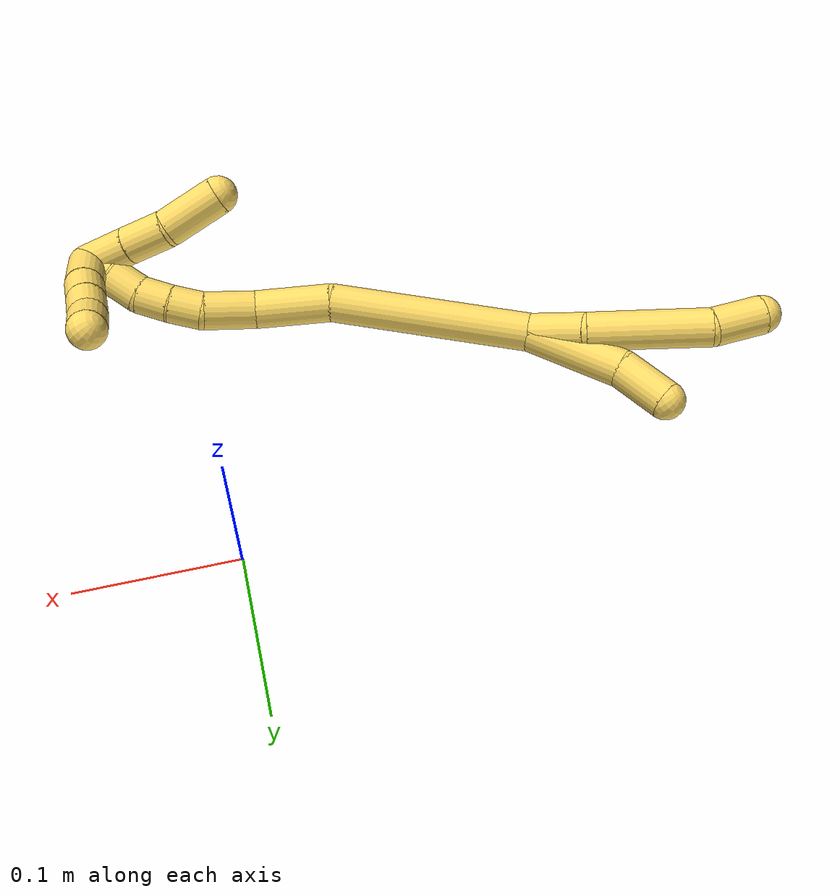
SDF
<sdf version="1.7">
 <world name="default">
  <model name="5">
   <static>0</static>
   <link name="5">
    <collision name="collision-cylinder-e_1_2_8">
     <pose>-0.008598 0.004806 0.016027 -0.291349 -0.474681 0.07095</pose>
     <geometry><cylinder><radius>0.0125</radius><length>0.037623</length></cylinder></geometry>
     <surface>
      <friction><ode><mu>1.16</mu><mu2>1.16</mu2><slip1>0</slip1><slip2>0</slip2></ode></friction>
      <contact><ode><kp>1e+06</kp><kd>1</kd><max_vel>0</max_vel><min_depth>0.001</min_depth></ode></contact>
     </surface>
    </collision>
    <visual name="visual-cylinder-e_1_2_8">
     <pose>-0.008598 0.004806 0.016027 -0.291349 -0.474681 0.07095</pose>
     <geometry><cylinder><radius>0.0125</radius><length>0.037623</length></cylinder></geometry>
     <material><ambient>1 0.858824 0.4 1</ambient></material>
    </visual>
    <collision name="collision-cylinder-e_2_8_9">
     <pose>-0.042853 0.011206 0.062117 -0.052956 -0.705785 0.019508</pose>
     <geometry><cylinder><radius>0.0125</radius><length>0.079112</length></cylinder></geometry>
     <surface>
      <friction><ode><mu>1.16</mu><mu2>1.16</mu2><slip1>0</slip1><slip2>0</slip2></ode></friction>
      <contact><ode><kp>1e+06</kp><kd>1</kd><max_vel>0</max_vel><min_depth>0.001</min_depth></ode></contact>
     </surface>
    </collision>
    <visual name="visual-cylinder-e_2_8_9">
     <pose>-0.042853 0.011206 0.062117 -0.052956 -0.705785 0.019508</pose>
     <geometry><cylinder><radius>0.0125</radius><length>0.079112</length></cylinder></geometry>
     <material><ambient>1 0.858824 0.4 1</ambient></material>
    </visual>
    <collision name="collision-cylinder-e_3_9_6">
     <pose>-0.079436 0.00807 0.103796 0.386694 -0.716668 -0.146388</pose>
     <geometry><cylinder><radius>0.0125</radius><length>0.033265</length></cylinder></geometry>
     <surface>
      <friction><ode><mu>1.16</mu><mu2>1.16</mu2><slip1>0</slip1><slip2>0</slip2></ode></friction>
      <contact><ode><kp>1e+06</kp><kd>1</kd><max_vel>0</max_vel><min_depth>0.001</min_depth></ode></contact>
     </surface>
    </collision>
    <visual name="visual-cylinder-e_3_9_6">
     <pose>-0.079436 0.00807 0.103796 0.386694 -0.716668 -0.146388</pose>
     <geometry><cylinder><radius>0.0125</radius><length>0.033265</length></cylinder></geometry>
     <material><ambient>1 0.858824 0.4 1</ambient></material>
    </visual>
    <collision name="collision-cylinder-e_1_2_10">
     <pose>-0.019843 0.016395 0.020193 -0.681979 -0.651699 0.238664</pose>
     <geometry><cylinder><radius>0.0125</radius><length>0.065431</length></cylinder></geometry>
     <surface>
      <friction><ode><mu>1.16</mu><mu2>1.16</mu2><slip1>0</slip1><slip2>0</slip2></ode></friction>
      <contact><ode><kp>1e+06</kp><kd>1</kd><max_vel>0</max_vel><min_depth>0.001</min_depth></ode></contact>
     </surface>
    </collision>
    <visual name="visual-cylinder-e_1_2_10">
     <pose>-0.019843 0.016395 0.020193 -0.681979 -0.651699 0.238664</pose>
     <geometry><cylinder><radius>0.0125</radius><length>0.065431</length></cylinder></geometry>
     <material><ambient>1 0.858824 0.4 1</ambient></material>
    </visual>
    <collision name="collision-cylinder-e_2_10_5">
     <pose>-0.049811 0.044476 0.048111 -0.986631 -0.625813 0.344453</pose>
     <geometry><cylinder><radius>0.0125</radius><length>0.034569</length></cylinder></geometry>
     <surface>
      <friction><ode><mu>1.16</mu><mu2>1.16</mu2><slip1>0</slip1><slip2>0</slip2></ode></friction>
      <contact><ode><kp>1e+06</kp><kd>1</kd><max_vel>0</max_vel><min_depth>0.001</min_depth></ode></contact>
     </surface>
    </collision>
    <visual name="visual-cylinder-e_2_10_5">
     <pose>-0.049811 0.044476 0.048111 -0.986631 -0.625813 0.344453</pose>
     <geometry><cylinder><radius>0.0125</radius><length>0.034569</length></cylinder></geometry>
     <material><ambient>1 0.858824 0.4 1</ambient></material>
    </visual>
    <collision name="collision-cylinder-e_1_2_11">
     <pose>0.049138 -0.009624 -0.042212 2.91744 0.848521 2.6532</pose>
     <geometry><cylinder><radius>0.0125</radius><length>0.130981</length></cylinder></geometry>
     <surface>
      <friction><ode><mu>1.16</mu><mu2>1.16</mu2><slip1>0</slip1><slip2>0</slip2></ode></friction>
      <contact><ode><kp>1e+06</kp><kd>1</kd><max_vel>0</max_vel><min_depth>0.001</min_depth></ode></contact>
     </surface>
    </collision>
    <visual name="visual-cylinder-e_1_2_11">
     <pose>0.049138 -0.009624 -0.042212 2.91744 0.848521 2.6532</pose>
     <geometry><cylinder><radius>0.0125</radius><length>0.130981</length></cylinder></geometry>
     <material><ambient>1 0.858824 0.4 1</ambient></material>
    </visual>
    <collision name="collision-cylinder-e_2_11_12">
     <pose>0.114363 -0.018604 -0.103683 -3.10822 0.69564 -3.0496</pose>
     <geometry><cylinder><radius>0.0125</radius><length>0.050204</length></cylinder></geometry>
     <surface>
      <friction><ode><mu>1.16</mu><mu2>1.16</mu2><slip1>0</slip1><slip2>0</slip2></ode></friction>
      <contact><ode><kp>1e+06</kp><kd>1</kd><max_vel>0</max_vel><min_depth>0.001</min_depth></ode></contact>
     </surface>
    </collision>
    <visual name="visual-cylinder-e_2_11_12">
     <pose>0.114363 -0.018604 -0.103683 -3.10822 0.69564 -3.0496</pose>
     <geometry><cylinder><radius>0.0125</radius><length>0.050204</length></cylinder></geometry>
     <material><ambient>1 0.858824 0.4 1</ambient></material>
    </visual>
    <collision name="collision-cylinder-e_3_12_13">
     <pose>0.144275 -0.015005 -0.132995 -2.85556 0.922225 -2.57739</pose>
     <geometry><cylinder><radius>0.0125</radius><length>0.034695</length></cylinder></geometry>
     <surface>
      <friction><ode><mu>1.16</mu><mu2>1.16</mu2><slip1>0</slip1><slip2>0</slip2></ode></friction>
      <contact><ode><kp>1e+06</kp><kd>1</kd><max_vel>0</max_vel><min_depth>0.001</min_depth></ode></contact>
     </surface>
    </collision>
    <visual name="visual-cylinder-e_3_12_13">
     <pose>0.144275 -0.015005 -0.132995 -2.85556 0.922225 -2.57739</pose>
     <geometry><cylinder><radius>0.0125</radius><length>0.034695</length></cylinder></geometry>
     <material><ambient>1 0.858824 0.4 1</ambient></material>
    </visual>
    <collision name="collision-cylinder-e_4_13_14">
     <pose>0.16689 -0.013454 -0.148971 2.90864 0.965076 2.70209</pose>
     <geometry><cylinder><radius>0.0125</radius><length>0.021385</length></cylinder></geometry>
     <surface>
      <friction><ode><mu>1.16</mu><mu2>1.16</mu2><slip1>0</slip1><slip2>0</slip2></ode></friction>
      <contact><ode><kp>1e+06</kp><kd>1</kd><max_vel>0</max_vel><min_depth>0.001</min_depth></ode></contact>
     </surface>
    </collision>
    <visual name="visual-cylinder-e_4_13_14">
     <pose>0.16689 -0.013454 -0.148971 2.90864 0.965076 2.70209</pose>
     <geometry><cylinder><radius>0.0125</radius><length>0.021385</length></cylinder></geometry>
     <material><ambient>1 0.858824 0.4 1</ambient></material>
    </visual>
    <collision name="collision-cylinder-e_5_14_15">
     <pose>0.183868 -0.017411 -0.160649 2.72418 0.915358 2.32943</pose>
     <geometry><cylinder><radius>0.0125</radius><length>0.020656</length></cylinder></geometry>
     <surface>
      <friction><ode><mu>1.16</mu><mu2>1.16</mu2><slip1>0</slip1><slip2>0</slip2></ode></friction>
      <contact><ode><kp>1e+06</kp><kd>1</kd><max_vel>0</max_vel><min_depth>0.001</min_depth></ode></contact>
     </surface>
    </collision>
    <visual name="visual-cylinder-e_5_14_15">
     <pose>0.183868 -0.017411 -0.160649 2.72418 0.915358 2.32943</pose>
     <geometry><cylinder><radius>0.0125</radius><length>0.020656</length></cylinder></geometry>
     <material><ambient>1 0.858824 0.4 1</ambient></material>
    </visual>
    <collision name="collision-cylinder-e_6_15_16">
     <pose>0.200637 -0.025259 -0.17072 2.25475 0.898377 1.5856</pose>
     <geometry><cylinder><radius>0.0125</radius><length>0.021938</length></cylinder></geometry>
     <surface>
      <friction><ode><mu>1.16</mu><mu2>1.16</mu2><slip1>0</slip1><slip2>0</slip2></ode></friction>
      <contact><ode><kp>1e+06</kp><kd>1</kd><max_vel>0</max_vel><min_depth>0.001</min_depth></ode></contact>
     </surface>
    </collision>
    <visual name="visual-cylinder-e_6_15_16">
     <pose>0.200637 -0.025259 -0.17072 2.25475 0.898377 1.5856</pose>
     <geometry><cylinder><radius>0.0125</radius><length>0.021938</length></cylinder></geometry>
     <material><ambient>1 0.858824 0.4 1</ambient></material>
    </visual>
    <collision name="collision-cylinder-e_7_16_1">
     <pose>0.216368 -0.035337 -0.180274 2.40153 0.789461 1.6421</pose>
     <geometry><cylinder><radius>0.0125</radius><length>0.020141</length></cylinder></geometry>
     <surface>
      <friction><ode><mu>1.16</mu><mu2>1.16</mu2><slip1>0</slip1><slip2>0</slip2></ode></friction>
      <contact><ode><kp>1e+06</kp><kd>1</kd><max_vel>0</max_vel><min_depth>0.001</min_depth></ode></contact>
     </surface>
    </collision>
    <visual name="visual-cylinder-e_7_16_1">
     <pose>0.216368 -0.035337 -0.180274 2.40153 0.789461 1.6421</pose>
     <geometry><cylinder><radius>0.0125</radius><length>0.020141</length></cylinder></geometry>
     <material><ambient>1 0.858824 0.4 1</ambient></material>
    </visual>
    <collision name="collision-cylinder-e_1_1_17">
     <pose>0.226015 -0.023675 -0.17889 -1.18799 0.139944 -0.094596</pose>
     <geometry><cylinder><radius>0.0125</radius><length>0.035804</length></cylinder></geometry>
     <surface>
      <friction><ode><mu>1.16</mu><mu2>1.16</mu2><slip1>0</slip1><slip2>0</slip2></ode></friction>
      <contact><ode><kp>1e+06</kp><kd>1</kd><max_vel>0</max_vel><min_depth>0.001</min_depth></ode></contact>
     </surface>
    </collision>
    <visual name="visual-cylinder-e_1_1_17">
     <pose>0.226015 -0.023675 -0.17889 -1.18799 0.139944 -0.094596</pose>
     <geometry><cylinder><radius>0.0125</radius><length>0.035804</length></cylinder></geometry>
     <material><ambient>1 0.858824 0.4 1</ambient></material>
    </visual>
    <collision name="collision-cylinder-e_2_17_18">
     <pose>0.22875 0.002556 -0.168014 -1.16079 0.022265 -0.0146</pose>
     <geometry><cylinder><radius>0.0125</radius><length>0.021349</length></cylinder></geometry>
     <surface>
      <friction><ode><mu>1.16</mu><mu2>1.16</mu2><slip1>0</slip1><slip2>0</slip2></ode></friction>
      <contact><ode><kp>1e+06</kp><kd>1</kd><max_vel>0</max_vel><min_depth>0.001</min_depth></ode></contact>
     </surface>
    </collision>
    <visual name="visual-cylinder-e_2_17_18">
     <pose>0.22875 0.002556 -0.168014 -1.16079 0.022265 -0.0146</pose>
     <geometry><cylinder><radius>0.0125</radius><length>0.021349</length></cylinder></geometry>
     <material><ambient>1 0.858824 0.4 1</ambient></material>
    </visual>
    <collision name="collision-cylinder-e_3_18_19">
     <pose>0.22908 0.021976 -0.159902 -1.18984 0.008853 -0.005991</pose>
     <geometry><cylinder><radius>0.0125</radius><length>0.020755</length></cylinder></geometry>
     <surface>
      <friction><ode><mu>1.16</mu><mu2>1.16</mu2><slip1>0</slip1><slip2>0</slip2></ode></friction>
      <contact><ode><kp>1e+06</kp><kd>1</kd><max_vel>0</max_vel><min_depth>0.001</min_depth></ode></contact>
     </surface>
    </collision>
    <visual name="visual-cylinder-e_3_18_19">
     <pose>0.22908 0.021976 -0.159902 -1.18984 0.008853 -0.005991</pose>
     <geometry><cylinder><radius>0.0125</radius><length>0.020755</length></cylinder></geometry>
     <material><ambient>1 0.858824 0.4 1</ambient></material>
    </visual>
    <collision name="collision-cylinder-e_4_19_4">
     <pose>0.230871 0.041337 -0.151094 -1.10008 0.154488 -0.094844</pose>
     <geometry><cylinder><radius>0.0125</radius><length>0.022092</length></cylinder></geometry>
     <surface>
      <friction><ode><mu>1.16</mu><mu2>1.16</mu2><slip1>0</slip1><slip2>0</slip2></ode></friction>
      <contact><ode><kp>1e+06</kp><kd>1</kd><max_vel>0</max_vel><min_depth>0.001</min_depth></ode></contact>
     </surface>
    </collision>
    <visual name="visual-cylinder-e_4_19_4">
     <pose>0.230871 0.041337 -0.151094 -1.10008 0.154488 -0.094844</pose>
     <geometry><cylinder><radius>0.0125</radius><length>0.022092</length></cylinder></geometry>
     <material><ambient>1 0.858824 0.4 1</ambient></material>
    </visual>
    <collision name="collision-cylinder-e_1_1_20">
     <pose>0.217733 -0.04208 -0.170813 0.132616 -0.371965 -0.024988</pose>
     <geometry><cylinder><radius>0.0125</radius><length>0.031834</length></cylinder></geometry>
     <surface>
      <friction><ode><mu>1.16</mu><mu2>1.16</mu2><slip1>0</slip1><slip2>0</slip2></ode></friction>
      <contact><ode><kp>1e+06</kp><kd>1</kd><max_vel>0</max_vel><min_depth>0.001</min_depth></ode></contact>
     </surface>
    </collision>
    <visual name="visual-cylinder-e_1_1_20">
     <pose>0.217733 -0.04208 -0.170813 0.132616 -0.371965 -0.024988</pose>
     <geometry><cylinder><radius>0.0125</radius><length>0.031834</length></cylinder></geometry>
     <material><ambient>1 0.858824 0.4 1</ambient></material>
    </visual>
    <collision name="collision-cylinder-e_2_20_21">
     <pose>0.206524 -0.045878 -0.142986 0.13906 -0.388418 -0.027394</pose>
     <geometry><cylinder><radius>0.0125</radius><length>0.028647</length></cylinder></geometry>
     <surface>
      <friction><ode><mu>1.16</mu><mu2>1.16</mu2><slip1>0</slip1><slip2>0</slip2></ode></friction>
      <contact><ode><kp>1e+06</kp><kd>1</kd><max_vel>0</max_vel><min_depth>0.001</min_depth></ode></contact>
     </surface>
    </collision>
    <visual name="visual-cylinder-e_2_20_21">
     <pose>0.206524 -0.045878 -0.142986 0.13906 -0.388418 -0.027394</pose>
     <geometry><cylinder><radius>0.0125</radius><length>0.028647</length></cylinder></geometry>
     <material><ambient>1 0.858824 0.4 1</ambient></material>
    </visual>
    <collision name="collision-cylinder-e_3_21_3">
     <pose>0.194469 -0.055015 -0.112735 0.402974 -0.342186 -0.070555</pose>
     <geometry><cylinder><radius>0.0125</radius><length>0.039519</length></cylinder></geometry>
     <surface>
      <friction><ode><mu>1.16</mu><mu2>1.16</mu2><slip1>0</slip1><slip2>0</slip2></ode></friction>
      <contact><ode><kp>1e+06</kp><kd>1</kd><max_vel>0</max_vel><min_depth>0.001</min_depth></ode></contact>
     </surface>
    </collision>
    <visual name="visual-cylinder-e_3_21_3">
     <pose>0.194469 -0.055015 -0.112735 0.402974 -0.342186 -0.070555</pose>
     <geometry><cylinder><radius>0.0125</radius><length>0.039519</length></cylinder></geometry>
     <material><ambient>1 0.858824 0.4 1</ambient></material>
    </visual>
    <collision name="collision-sphere-3">
     <pose>0.187839 -0.062315 -0.095612 0 -0 0</pose>
     <geometry><sphere><radius>0.0125</radius></sphere></geometry>
     <surface>
      <friction><ode><mu>1.16</mu><mu2>1.16</mu2><slip1>0</slip1><slip2>0</slip2></ode></friction>
      <contact><ode><kp>1e+06</kp><kd>1</kd><max_vel>0</max_vel><min_depth>0.001</min_depth></ode></contact>
     </surface>
    </collision>
    <visual name="visual-sphere-3">
     <pose>0.187839 -0.062315 -0.095612 0 -0 0</pose>
     <geometry><sphere><radius>0.0125</radius></sphere></geometry>
     <material><ambient>1 0.858824 0.4 1</ambient></material>
    </visual>
    <collision name="collision-sphere-21">
     <pose>0.201099 -0.047716 -0.129857 0 -0 0</pose>
     <geometry><sphere><radius>0.0125</radius></sphere></geometry>
     <surface>
      <friction><ode><mu>1.16</mu><mu2>1.16</mu2><slip1>0</slip1><slip2>0</slip2></ode></friction>
      <contact><ode><kp>1e+06</kp><kd>1</kd><max_vel>0</max_vel><min_depth>0.001</min_depth></ode></contact>
     </surface>
    </collision>
    <visual name="visual-sphere-21">
     <pose>0.201099 -0.047716 -0.129857 0 -0 0</pose>
     <geometry><sphere><radius>0.0125</radius></sphere></geometry>
     <material><ambient>1 0.858824 0.4 1</ambient></material>
    </visual>
    <collision name="collision-sphere-20">
     <pose>0.211948 -0.044041 -0.156114 0 -0 0</pose>
     <geometry><sphere><radius>0.0125</radius></sphere></geometry>
     <surface>
      <friction><ode><mu>1.16</mu><mu2>1.16</mu2><slip1>0</slip1><slip2>0</slip2></ode></friction>
      <contact><ode><kp>1e+06</kp><kd>1</kd><max_vel>0</max_vel><min_depth>0.001</min_depth></ode></contact>
     </surface>
    </collision>
    <visual name="visual-sphere-20">
     <pose>0.211948 -0.044041 -0.156114 0 -0 0</pose>
     <geometry><sphere><radius>0.0125</radius></sphere></geometry>
     <material><ambient>1 0.858824 0.4 1</ambient></material>
    </visual>
    <collision name="collision-sphere-4">
     <pose>0.232571 0.051065 -0.146144 0 -0 0</pose>
     <geometry><sphere><radius>0.0125</radius></sphere></geometry>
     <surface>
      <friction><ode><mu>1.16</mu><mu2>1.16</mu2><slip1>0</slip1><slip2>0</slip2></ode></friction>
      <contact><ode><kp>1e+06</kp><kd>1</kd><max_vel>0</max_vel><min_depth>0.001</min_depth></ode></contact>
     </surface>
    </collision>
    <visual name="visual-sphere-4">
     <pose>0.232571 0.051065 -0.146144 0 -0 0</pose>
     <geometry><sphere><radius>0.0125</radius></sphere></geometry>
     <material><ambient>1 0.858824 0.4 1</ambient></material>
    </visual>
    <collision name="collision-sphere-5">
     <pose>-0.059935 0.056162 0.055837 0 -0 0</pose>
     <geometry><sphere><radius>0.0125</radius></sphere></geometry>
     <surface>
      <friction><ode><mu>1.16</mu><mu2>1.16</mu2><slip1>0</slip1><slip2>0</slip2></ode></friction>
      <contact><ode><kp>1e+06</kp><kd>1</kd><max_vel>0</max_vel><min_depth>0.001</min_depth></ode></contact>
     </surface>
    </collision>
    <visual name="visual-sphere-5">
     <pose>-0.059935 0.056162 0.055837 0 -0 0</pose>
     <geometry><sphere><radius>0.0125</radius></sphere></geometry>
     <material><ambient>1 0.858824 0.4 1</ambient></material>
    </visual>
    <collision name="collision-sphere-10">
     <pose>-0.039686 0.032791 0.040386 0 -0 0</pose>
     <geometry><sphere><radius>0.0125</radius></sphere></geometry>
     <surface>
      <friction><ode><mu>1.16</mu><mu2>1.16</mu2><slip1>0</slip1><slip2>0</slip2></ode></friction>
      <contact><ode><kp>1e+06</kp><kd>1</kd><max_vel>0</max_vel><min_depth>0.001</min_depth></ode></contact>
     </surface>
    </collision>
    <visual name="visual-sphere-10">
     <pose>-0.039686 0.032791 0.040386 0 -0 0</pose>
     <geometry><sphere><radius>0.0125</radius></sphere></geometry>
     <material><ambient>1 0.858824 0.4 1</ambient></material>
    </visual>
    <collision name="collision-sphere-6">
     <pose>-0.090361 0.00334 0.115411 0 -0 0</pose>
     <geometry><sphere><radius>0.0125</radius></sphere></geometry>
     <surface>
      <friction><ode><mu>1.16</mu><mu2>1.16</mu2><slip1>0</slip1><slip2>0</slip2></ode></friction>
      <contact><ode><kp>1e+06</kp><kd>1</kd><max_vel>0</max_vel><min_depth>0.001</min_depth></ode></contact>
     </surface>
    </collision>
    <visual name="visual-sphere-6">
     <pose>-0.090361 0.00334 0.115411 0 -0 0</pose>
     <geometry><sphere><radius>0.0125</radius></sphere></geometry>
     <material><ambient>1 0.858824 0.4 1</ambient></material>
    </visual>
    <collision name="collision-sphere-9">
     <pose>-0.068511 0.012799 0.092181 0 -0 0</pose>
     <geometry><sphere><radius>0.0125</radius></sphere></geometry>
     <surface>
      <friction><ode><mu>1.16</mu><mu2>1.16</mu2><slip1>0</slip1><slip2>0</slip2></ode></friction>
      <contact><ode><kp>1e+06</kp><kd>1</kd><max_vel>0</max_vel><min_depth>0.001</min_depth></ode></contact>
     </surface>
    </collision>
    <visual name="visual-sphere-9">
     <pose>-0.068511 0.012799 0.092181 0 -0 0</pose>
     <geometry><sphere><radius>0.0125</radius></sphere></geometry>
     <material><ambient>1 0.858824 0.4 1</ambient></material>
    </visual>
    <collision name="collision-sphere-2">
     <geometry><sphere><radius>0.0125</radius></sphere></geometry>
     <surface>
      <friction><ode><mu>1.16</mu><mu2>1.16</mu2><slip1>0</slip1><slip2>0</slip2></ode></friction>
      <contact><ode><kp>1e+06</kp><kd>1</kd><max_vel>0</max_vel><min_depth>0.001</min_depth></ode></contact>
     </surface>
    </collision>
    <visual name="visual-sphere-2">
     <geometry><sphere><radius>0.0125</radius></sphere></geometry>
     <material><ambient>1 0.858824 0.4 1</ambient></material>
    </visual>
    <collision name="collision-sphere-19">
     <pose>0.229172 0.031609 -0.156044 0 -0 0</pose>
     <geometry><sphere><radius>0.0125</radius></sphere></geometry>
     <surface>
      <friction><ode><mu>1.16</mu><mu2>1.16</mu2><slip1>0</slip1><slip2>0</slip2></ode></friction>
      <contact><ode><kp>1e+06</kp><kd>1</kd><max_vel>0</max_vel><min_depth>0.001</min_depth></ode></contact>
     </surface>
    </collision>
    <visual name="visual-sphere-19">
     <pose>0.229172 0.031609 -0.156044 0 -0 0</pose>
     <geometry><sphere><radius>0.0125</radius></sphere></geometry>
     <material><ambient>1 0.858824 0.4 1</ambient></material>
    </visual>
    <collision name="collision-sphere-8">
     <pose>-0.017196 0.009612 0.032053 0 -0 0</pose>
     <geometry><sphere><radius>0.0125</radius></sphere></geometry>
     <surface>
      <friction><ode><mu>1.16</mu><mu2>1.16</mu2><slip1>0</slip1><slip2>0</slip2></ode></friction>
      <contact><ode><kp>1e+06</kp><kd>1</kd><max_vel>0</max_vel><min_depth>0.001</min_depth></ode></contact>
     </surface>
    </collision>
    <visual name="visual-sphere-8">
     <pose>-0.017196 0.009612 0.032053 0 -0 0</pose>
     <geometry><sphere><radius>0.0125</radius></sphere></geometry>
     <material><ambient>1 0.858824 0.4 1</ambient></material>
    </visual>
    <collision name="collision-sphere-11">
     <pose>0.098276 -0.019247 -0.084424 0 -0 0</pose>
     <geometry><sphere><radius>0.0125</radius></sphere></geometry>
     <surface>
      <friction><ode><mu>1.16</mu><mu2>1.16</mu2><slip1>0</slip1><slip2>0</slip2></ode></friction>
      <contact><ode><kp>1e+06</kp><kd>1</kd><max_vel>0</max_vel><min_depth>0.001</min_depth></ode></contact>
     </surface>
    </collision>
    <visual name="visual-sphere-11">
     <pose>0.098276 -0.019247 -0.084424 0 -0 0</pose>
     <geometry><sphere><radius>0.0125</radius></sphere></geometry>
     <material><ambient>1 0.858824 0.4 1</ambient></material>
    </visual>
    <collision name="collision-sphere-12">
     <pose>0.13045 -0.017961 -0.122942 0 -0 0</pose>
     <geometry><sphere><radius>0.0125</radius></sphere></geometry>
     <surface>
      <friction><ode><mu>1.16</mu><mu2>1.16</mu2><slip1>0</slip1><slip2>0</slip2></ode></friction>
      <contact><ode><kp>1e+06</kp><kd>1</kd><max_vel>0</max_vel><min_depth>0.001</min_depth></ode></contact>
     </surface>
    </collision>
    <visual name="visual-sphere-12">
     <pose>0.13045 -0.017961 -0.122942 0 -0 0</pose>
     <geometry><sphere><radius>0.0125</radius></sphere></geometry>
     <material><ambient>1 0.858824 0.4 1</ambient></material>
    </visual>
    <collision name="collision-sphere-13">
     <pose>0.1581 -0.012048 -0.143048 0 -0 0</pose>
     <geometry><sphere><radius>0.0125</radius></sphere></geometry>
     <surface>
      <friction><ode><mu>1.16</mu><mu2>1.16</mu2><slip1>0</slip1><slip2>0</slip2></ode></friction>
      <contact><ode><kp>1e+06</kp><kd>1</kd><max_vel>0</max_vel><min_depth>0.001</min_depth></ode></contact>
     </surface>
    </collision>
    <visual name="visual-sphere-13">
     <pose>0.1581 -0.012048 -0.143048 0 -0 0</pose>
     <geometry><sphere><radius>0.0125</radius></sphere></geometry>
     <material><ambient>1 0.858824 0.4 1</ambient></material>
    </visual>
    <collision name="collision-sphere-14">
     <pose>0.175681 -0.014859 -0.154894 0 -0 0</pose>
     <geometry><sphere><radius>0.0125</radius></sphere></geometry>
     <surface>
      <friction><ode><mu>1.16</mu><mu2>1.16</mu2><slip1>0</slip1><slip2>0</slip2></ode></friction>
      <contact><ode><kp>1e+06</kp><kd>1</kd><max_vel>0</max_vel><min_depth>0.001</min_depth></ode></contact>
     </surface>
    </collision>
    <visual name="visual-sphere-14">
     <pose>0.175681 -0.014859 -0.154894 0 -0 0</pose>
     <geometry><sphere><radius>0.0125</radius></sphere></geometry>
     <material><ambient>1 0.858824 0.4 1</ambient></material>
    </visual>
    <collision name="collision-sphere-15">
     <pose>0.192056 -0.019963 -0.166403 0 -0 0</pose>
     <geometry><sphere><radius>0.0125</radius></sphere></geometry>
     <surface>
      <friction><ode><mu>1.16</mu><mu2>1.16</mu2><slip1>0</slip1><slip2>0</slip2></ode></friction>
      <contact><ode><kp>1e+06</kp><kd>1</kd><max_vel>0</max_vel><min_depth>0.001</min_depth></ode></contact>
     </surface>
    </collision>
    <visual name="visual-sphere-15">
     <pose>0.192056 -0.019963 -0.166403 0 -0 0</pose>
     <geometry><sphere><radius>0.0125</radius></sphere></geometry>
     <material><ambient>1 0.858824 0.4 1</ambient></material>
    </visual>
    <collision name="collision-sphere-16">
     <pose>0.209218 -0.030554 -0.175037 0 -0 0</pose>
     <geometry><sphere><radius>0.0125</radius></sphere></geometry>
     <surface>
      <friction><ode><mu>1.16</mu><mu2>1.16</mu2><slip1>0</slip1><slip2>0</slip2></ode></friction>
      <contact><ode><kp>1e+06</kp><kd>1</kd><max_vel>0</max_vel><min_depth>0.001</min_depth></ode></contact>
     </surface>
    </collision>
    <visual name="visual-sphere-16">
     <pose>0.209218 -0.030554 -0.175037 0 -0 0</pose>
     <geometry><sphere><radius>0.0125</radius></sphere></geometry>
     <material><ambient>1 0.858824 0.4 1</ambient></material>
    </visual>
    <collision name="collision-sphere-1">
     <pose>0.223518 -0.040119 -0.185511 0 -0 0</pose>
     <geometry><sphere><radius>0.0125</radius></sphere></geometry>
     <surface>
      <friction><ode><mu>1.16</mu><mu2>1.16</mu2><slip1>0</slip1><slip2>0</slip2></ode></friction>
      <contact><ode><kp>1e+06</kp><kd>1</kd><max_vel>0</max_vel><min_depth>0.001</min_depth></ode></contact>
     </surface>
    </collision>
    <visual name="visual-sphere-1">
     <pose>0.223518 -0.040119 -0.185511 0 -0 0</pose>
     <geometry><sphere><radius>0.0125</radius></sphere></geometry>
     <material><ambient>1 0.858824 0.4 1</ambient></material>
    </visual>
    <collision name="collision-sphere-18">
     <pose>0.228988 0.012343 -0.16376 0 -0 0</pose>
     <geometry><sphere><radius>0.0125</radius></sphere></geometry>
     <surface>
      <friction><ode><mu>1.16</mu><mu2>1.16</mu2><slip1>0</slip1><slip2>0</slip2></ode></friction>
      <contact><ode><kp>1e+06</kp><kd>1</kd><max_vel>0</max_vel><min_depth>0.001</min_depth></ode></contact>
     </surface>
    </collision>
    <visual name="visual-sphere-18">
     <pose>0.228988 0.012343 -0.16376 0 -0 0</pose>
     <geometry><sphere><radius>0.0125</radius></sphere></geometry>
     <material><ambient>1 0.858824 0.4 1</ambient></material>
    </visual>
    <collision name="collision-sphere-17">
     <pose>0.228513 -0.007231 -0.172268 0 -0 0</pose>
     <geometry><sphere><radius>0.0125</radius></sphere></geometry>
     <surface>
      <friction><ode><mu>1.16</mu><mu2>1.16</mu2><slip1>0</slip1><slip2>0</slip2></ode></friction>
      <contact><ode><kp>1e+06</kp><kd>1</kd><max_vel>0</max_vel><min_depth>0.001</min_depth></ode></contact>
     </surface>
    </collision>
    <visual name="visual-sphere-17">
     <pose>0.228513 -0.007231 -0.172268 0 -0 0</pose>
     <geometry><sphere><radius>0.0125</radius></sphere></geometry>
     <material><ambient>1 0.858824 0.4 1</ambient></material>
    </visual>
    <inertial>
     <pose>0.089729 -0.006579 -0.063883 0 -0 0</pose>
     <mass>0.75</mass>
     <inertia>
      <ixx>3.2e-05</ixx>
      <ixy>0</ixy>
      <ixz>0</ixz>
      <iyy>0.000372</iyy>
      <iyz>0</iyz>
      <izz>-9.1e-05</izz>
     </inertia>
    </inertial>
   </link>
   <pose>-0.207699 -0.117869 0.01149 0.10437 -0.760656 -0.306347</pose>
  </model>
 </world>
</sdf>
